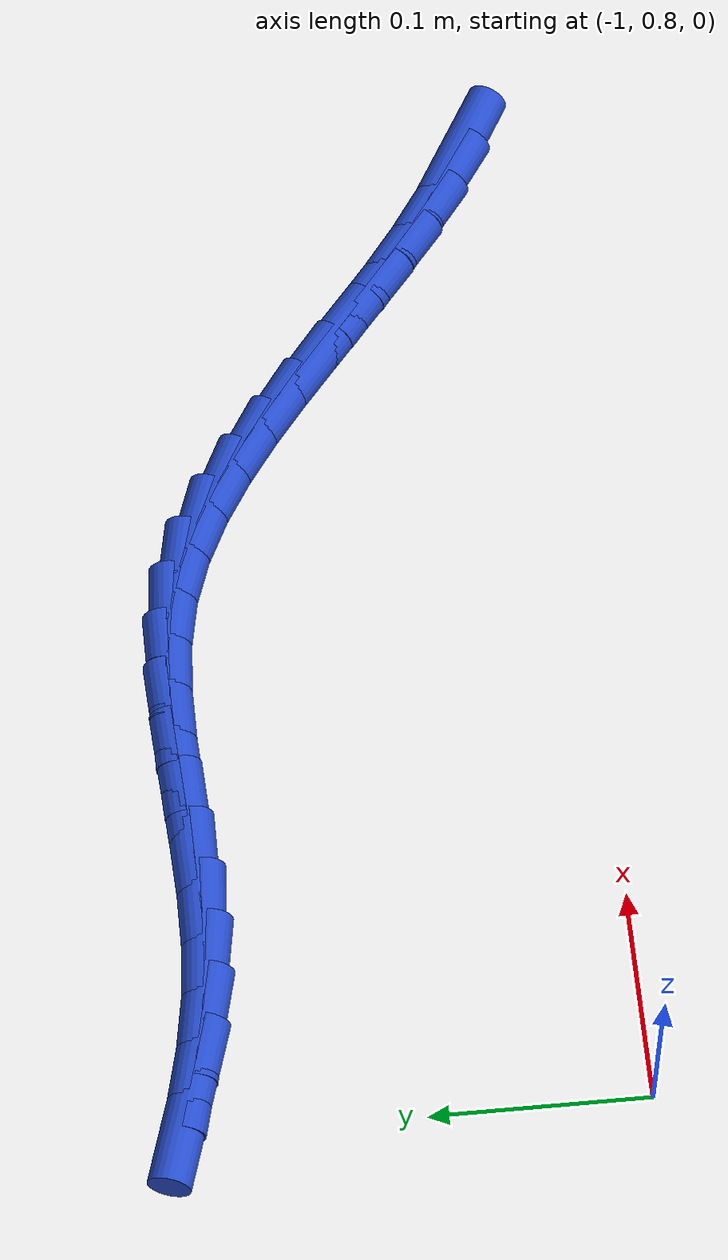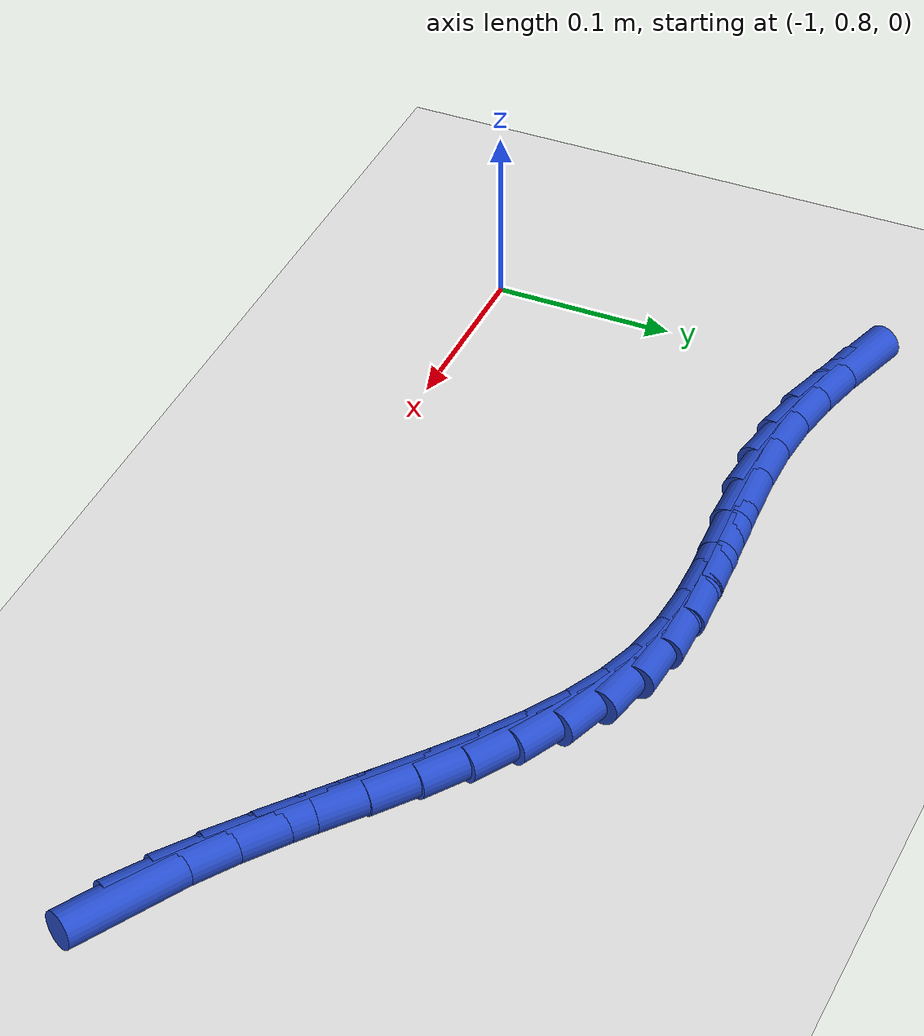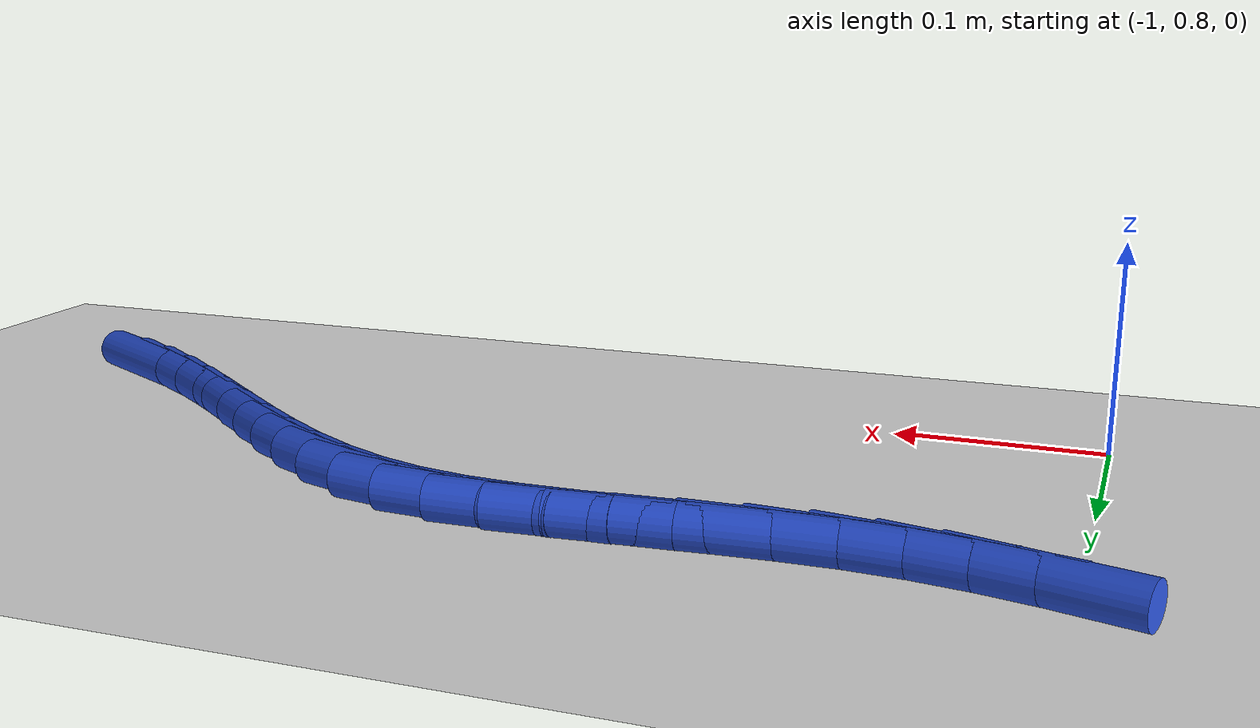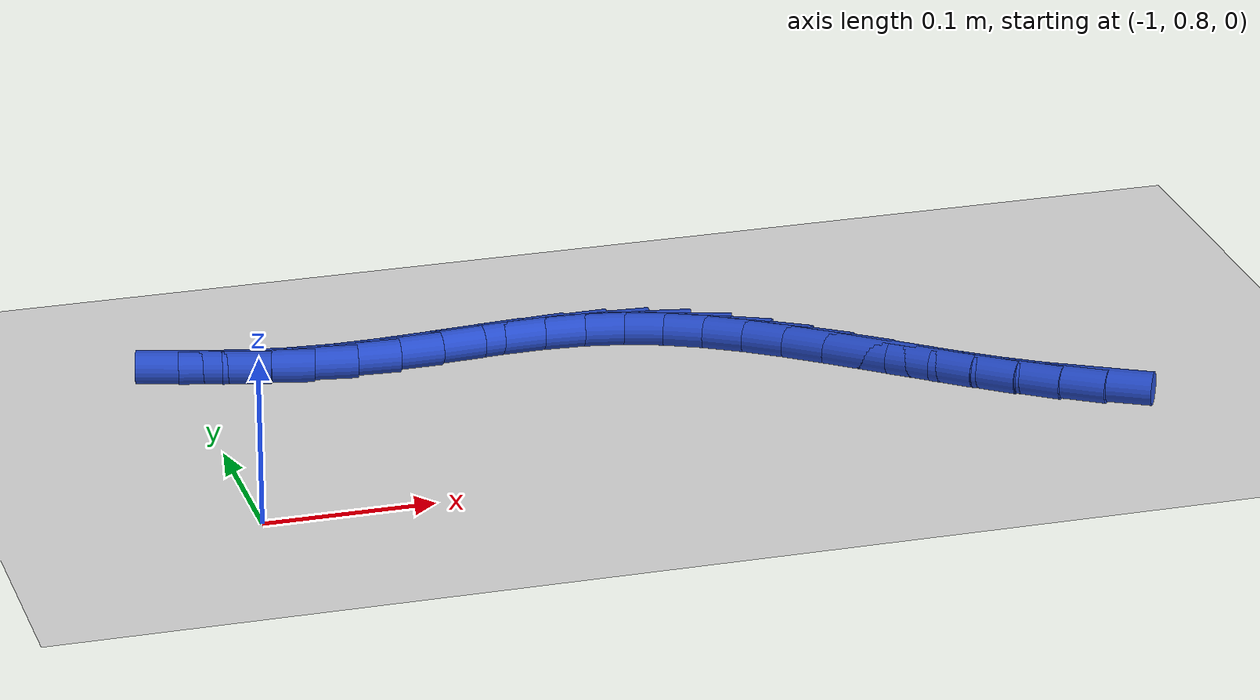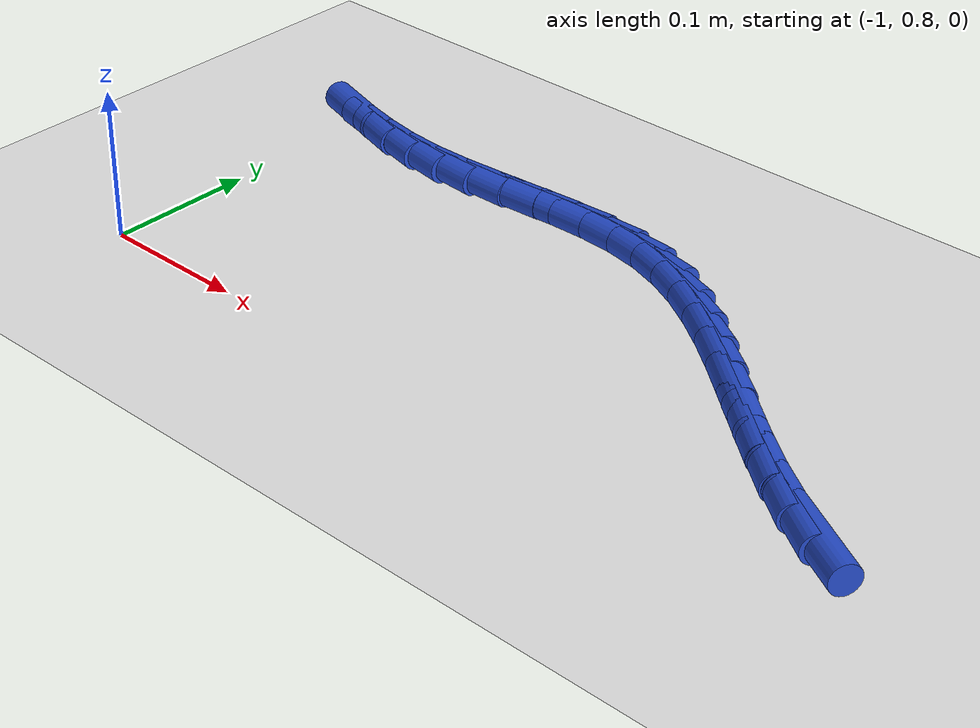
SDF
<sdf version="1.6">
 <world name="default">
  <model name="ground_plane">
   <static>1</static>
   <link name="link">
    <collision name="collision">
     <geometry><plane><normal>0 0 1</normal><size>100 100</size></plane></geometry>
     <surface><friction><ode><mu>100</mu><mu2>50</mu2></ode></friction></surface>
    </collision>
    <visual name="visual">
     <cast_shadows>0</cast_shadows>
     <geometry><plane><normal>0 0 1</normal><size>100 100</size></plane></geometry>
     <material>
      <script><uri>file://media/materials/scripts/gazebo.material</uri><name>Gazebo/WhiteGlow</name></script>
     </material>
    </visual>
   </link>
  </model>
  <model name="line">
   <link name="link_41">
    <pose>-0.49815186391106436 0.8376201337542142 0.01 0 1.57 -0.5094535954138438</pose>
    <collision name="collision">
     <geometry><cylinder><radius>0.01</radius><length>0.08</length></cylinder></geometry>
    </collision>
    <visual name="visual">
     <material>
      <script><name>Gazebo/Blue</name><uri>file://media/materials/scripts/gazebo.material</uri></script>
     </material>
     <geometry><cylinder><radius>0.01</radius><length>0.08</length></cylinder></geometry>
    </visual>
   </link>
   <link name="link_42">
    <pose>-0.5211029759396922 0.8504415790092729 0.01 0 1.57 -0.5836437808994529</pose>
    <collision name="collision">
     <geometry><cylinder><radius>0.01</radius><length>0.08</length></cylinder></geometry>
    </collision>
    <visual name="visual">
     <material>
      <script><name>Gazebo/Blue</name><uri>file://media/materials/scripts/gazebo.material</uri></script>
     </material>
     <geometry><cylinder><radius>0.01</radius><length>0.08</length></cylinder></geometry>
    </visual>
   </link>
   <link name="link_43">
    <pose>-0.5431909472179036 0.8650282276906818 0.01 0 1.57 -0.637002494441879</pose>
    <collision name="collision">
     <geometry><cylinder><radius>0.01</radius><length>0.08</length></cylinder></geometry>
    </collision>
    <visual name="visual">
     <material>
      <script><name>Gazebo/Blue</name><uri>file://media/materials/scripts/gazebo.material</uri></script>
     </material>
     <geometry><cylinder><radius>0.01</radius><length>0.08</length></cylinder></geometry>
    </visual>
   </link>
   <link name="link_44">
    <pose>-0.5646066382283363 0.8808735909065486 0.01 0 1.57 -0.6703311933788669</pose>
    <collision name="collision">
     <geometry><cylinder><radius>0.01</radius><length>0.08</length></cylinder></geometry>
    </collision>
    <visual name="visual">
     <material>
      <script><name>Gazebo/Blue</name><uri>file://media/materials/scripts/gazebo.material</uri></script>
     </material>
     <geometry><cylinder><radius>0.01</radius><length>0.08</length></cylinder></geometry>
    </visual>
   </link>
   <link name="link_45">
    <pose>-0.5855412694065132 0.8974704280986114 0.01 0 1.57 -0.6842734671761392</pose>
    <collision name="collision">
     <geometry><cylinder><radius>0.01</radius><length>0.08</length></cylinder></geometry>
    </collision>
    <visual name="visual">
     <material>
      <script><name>Gazebo/Blue</name><uri>file://media/materials/scripts/gazebo.material</uri></script>
     </material>
     <geometry><cylinder><radius>0.01</radius><length>0.08</length></cylinder></geometry>
    </visual>
   </link>
   <link name="link_46">
    <pose>-0.6061860611879569 0.9143114987086075 0.01 0 1.57 -0.6789151551553769</pose>
    <collision name="collision">
     <geometry><cylinder><radius>0.01</radius><length>0.08</length></cylinder></geometry>
    </collision>
    <visual name="visual">
     <material>
      <script><name>Gazebo/Blue</name><uri>file://media/materials/scripts/gazebo.material</uri></script>
     </material>
     <geometry><cylinder><radius>0.01</radius><length>0.08</length></cylinder></geometry>
    </visual>
   </link>
   <link name="link_47">
    <pose>-0.6267322340081901 0.9308895621782742 0.01 0 1.57 -0.6536173579724586</pose>
    <collision name="collision">
     <geometry><cylinder><radius>0.01</radius><length>0.08</length></cylinder></geometry>
    </collision>
    <visual name="visual">
     <material>
      <script><name>Gazebo/Blue</name><uri>file://media/materials/scripts/gazebo.material</uri></script>
     </material>
     <geometry><cylinder><radius>0.01</radius><length>0.08</length></cylinder></geometry>
    </visual>
   </link>
   <link name="link_48">
    <pose>-0.6473710083027352 0.9466973779493486 0.01 0 1.57 -0.6070117447316465</pose>
    <collision name="collision">
     <geometry><cylinder><radius>0.01</radius><length>0.08</length></cylinder></geometry>
    </collision>
    <visual name="visual">
     <material>
      <script><name>Gazebo/Blue</name><uri>file://media/materials/scripts/gazebo.material</uri></script>
     </material>
     <geometry><cylinder><radius>0.01</radius><length>0.08</length></cylinder></geometry>
    </visual>
   </link>
   <link name="link_49">
    <pose>-0.6682936045071151 0.9612277054635684 0.01 0 1.57 -0.537218118958133</pose>
    <collision name="collision">
     <geometry><cylinder><radius>0.01</radius><length>0.08</length></cylinder></geometry>
    </collision>
    <visual name="visual">
     <material>
      <script><name>Gazebo/Blue</name><uri>file://media/materials/scripts/gazebo.material</uri></script>
     </material>
     <geometry><cylinder><radius>0.01</radius><length>0.08</length></cylinder></geometry>
    </visual>
   </link>
   <link name="link_50">
    <pose>-0.6896912430568524 0.9739733041626711 0.01 0 1.57 -0.44245964181043396</pose>
    <collision name="collision">
     <geometry><cylinder><radius>0.01</radius><length>0.08</length></cylinder></geometry>
    </collision>
    <visual name="visual">
     <material>
      <script><name>Gazebo/Blue</name><uri>file://media/materials/scripts/gazebo.material</uri></script>
     </material>
     <geometry><cylinder><radius>0.01</radius><length>0.08</length></cylinder></geometry>
    </visual>
   </link>
   <link name="link_51">
    <pose>-0.7117551443874699 0.984426933488394 0.01 0 1.57 -0.3222985053641382</pose>
    <collision name="collision">
     <geometry><cylinder><radius>0.01</radius><length>0.08</length></cylinder></geometry>
    </collision>
    <visual name="visual">
     <material>
      <script><name>Gazebo/Blue</name><uri>file://media/materials/scripts/gazebo.material</uri></script>
     </material>
     <geometry><cylinder><radius>0.01</radius><length>0.08</length></cylinder></geometry>
    </visual>
   </link>
   <link name="link_52">
    <pose>-0.7346765289344896 0.992081352882474 0.01 0 1.57 -0.18304156253018988</pose>
    <collision name="collision">
     <geometry><cylinder><radius>0.01</radius><length>0.08</length></cylinder></geometry>
    </collision>
    <visual name="visual">
     <material>
      <script><name>Gazebo/Blue</name><uri>file://media/materials/scripts/gazebo.material</uri></script>
     </material>
     <geometry><cylinder><radius>0.01</radius><length>0.08</length></cylinder></geometry>
    </visual>
   </link>
   <link name="link_53">
    <pose>-0.7586194103235463 0.996513504806401 0.01 0 1.57 -0.06379458460760433</pose>
    <collision name="collision">
     <geometry><cylinder><radius>0.01</radius><length>0.08</length></cylinder></geometry>
    </collision>
    <visual name="visual">
     <material>
      <script><name>Gazebo/Blue</name><uri>file://media/materials/scripts/gazebo.material</uri></script>
     </material>
     <geometry><cylinder><radius>0.01</radius><length>0.08</length></cylinder></geometry>
    </visual>
   </link>
   <link name="link_54">
    <pose>-0.783488654509642 0.9981021836684696 0.01 0 1.57 0.01689655816658638</pose>
    <collision name="collision">
     <geometry><cylinder><radius>0.01</radius><length>0.08</length></cylinder></geometry>
    </collision>
    <visual name="visual">
     <material>
      <script><name>Gazebo/Blue</name><uri>file://media/materials/scripts/gazebo.material</uri></script>
     </material>
     <geometry><cylinder><radius>0.01</radius><length>0.08</length></cylinder></geometry>
    </visual>
   </link>
   <link name="link_55">
    <pose>-0.8090455892162448 0.9976703183355835 0.01 0 1.57 0.06239927145488688</pose>
    <collision name="collision">
     <geometry><cylinder><radius>0.01</radius><length>0.08</length></cylinder></geometry>
    </collision>
    <visual name="visual">
     <material>
      <script><name>Gazebo/Blue</name><uri>file://media/materials/scripts/gazebo.material</uri></script>
     </material>
     <geometry><cylinder><radius>0.01</radius><length>0.08</length></cylinder></geometry>
    </visual>
   </link>
   <link name="link_56">
    <pose>-0.835050018701258 0.996045551565482 0.01 0 1.57 0.07577581530114758</pose>
    <collision name="collision">
     <geometry><cylinder><radius>0.01</radius><length>0.08</length></cylinder></geometry>
    </collision>
    <visual name="visual">
     <material>
      <script><name>Gazebo/Blue</name><uri>file://media/materials/scripts/gazebo.material</uri></script>
     </material>
     <geometry><cylinder><radius>0.01</radius><length>0.08</length></cylinder></geometry>
    </visual>
   </link>
   <link name="link_57">
    <pose>-0.8612617472225845 0.9940555261159052 0.01 0 1.57 0.05828796879458267</pose>
    <collision name="collision">
     <geometry><cylinder><radius>0.01</radius><length>0.08</length></cylinder></geometry>
    </collision>
    <visual name="visual">
     <material>
      <script><name>Gazebo/Blue</name><uri>file://media/materials/scripts/gazebo.material</uri></script>
     </material>
     <geometry><cylinder><radius>0.01</radius><length>0.08</length></cylinder></geometry>
    </visual>
   </link>
   <link name="link_58">
    <pose>-0.887440579038127 0.992527884744592 0.01 0 1.57 0.009172016622314188</pose>
    <collision name="collision">
     <geometry><cylinder><radius>0.01</radius><length>0.08</length></cylinder></geometry>
    </collision>
    <visual name="visual">
     <material>
      <script><name>Gazebo/Blue</name><uri>file://media/materials/scripts/gazebo.material</uri></script>
     </material>
     <geometry><cylinder><radius>0.01</radius><length>0.08</length></cylinder></geometry>
    </visual>
   </link>
   <link name="link_59">
    <pose>-0.913346318405789 0.9922902702092831 0.01 0 1.57 -0.07218420985978058</pose>
    <collision name="collision">
     <geometry><cylinder><radius>0.01</radius><length>0.08</length></cylinder></geometry>
    </collision>
    <visual name="visual">
     <material>
      <script><name>Gazebo/Blue</name><uri>file://media/materials/scripts/gazebo.material</uri></script>
     </material>
     <geometry><cylinder><radius>0.01</radius><length>0.08</length></cylinder></geometry>
    </visual>
   </link>
   <link name="link_60">
    <pose>-0.938751846424488 0.9941273400051889 0.01 0 1.57 -0.1609225297054341</pose>
    <collision name="collision">
     <geometry><cylinder><radius>0.01</radius><length>0.08</length></cylinder></geometry>
    </collision>
    <visual name="visual">
     <material>
      <script><name>Gazebo/Blue</name><uri>file://media/materials/scripts/gazebo.material</uri></script>
     </material>
     <geometry><cylinder><radius>0.01</radius><length>0.08</length></cylinder></geometry>
    </visual>
   </link>
   <link name="link_61">
    <pose>-0.963630219173782 0.9981657506558663 0.01 0 1.57 -0.23464959813051267</pose>
    <collision name="collision">
     <geometry><cylinder><radius>0.01</radius><length>0.08</length></cylinder></geometry>
    </collision>
    <visual name="visual">
     <material>
      <script><name>Gazebo/Blue</name><uri>file://media/materials/scripts/gazebo.material</uri></script>
     </material>
     <geometry><cylinder><radius>0.01</radius><length>0.08</length></cylinder></geometry>
    </visual>
   </link>
   <link name="link_62">
    <pose>-0.9881109257917644 1.0040179430511984 0.01 0 1.57 -0.29144651557372064</pose>
    <collision name="collision">
     <geometry><cylinder><radius>0.01</radius><length>0.08</length></cylinder></geometry>
    </collision>
    <visual name="visual">
     <material>
      <script><name>Gazebo/Blue</name><uri>file://media/materials/scripts/gazebo.material</uri></script>
     </material>
     <geometry><cylinder><radius>0.01</radius><length>0.08</length></cylinder></geometry>
    </visual>
   </link>
  </model>
 </world>
</sdf>
